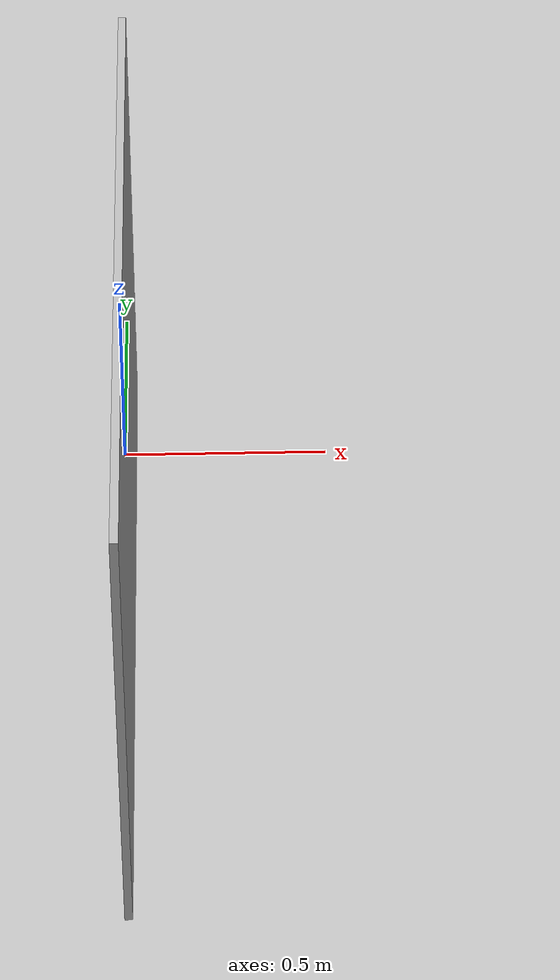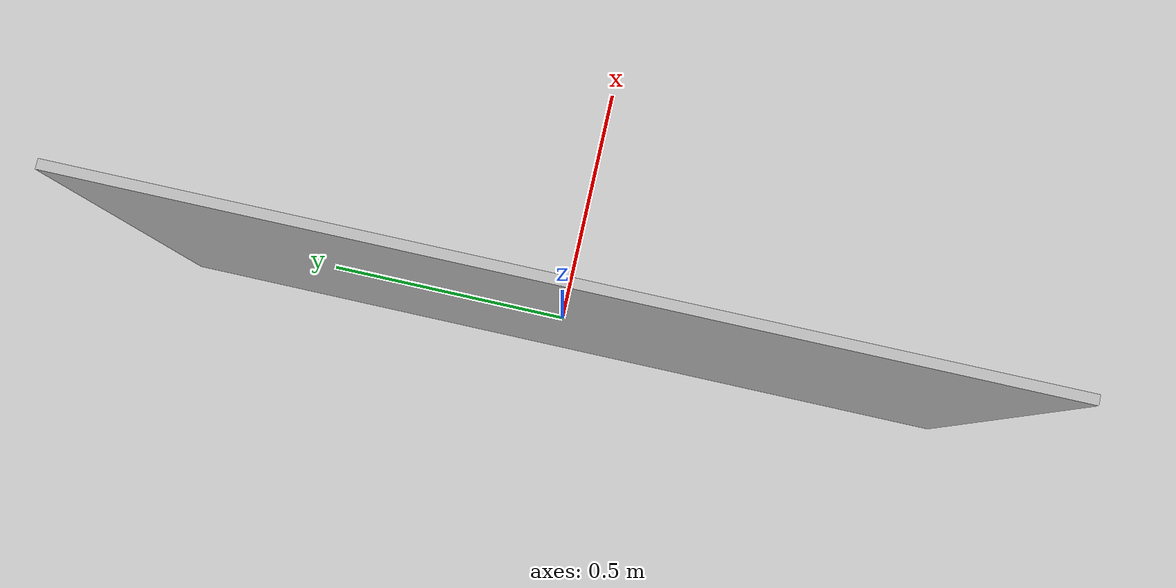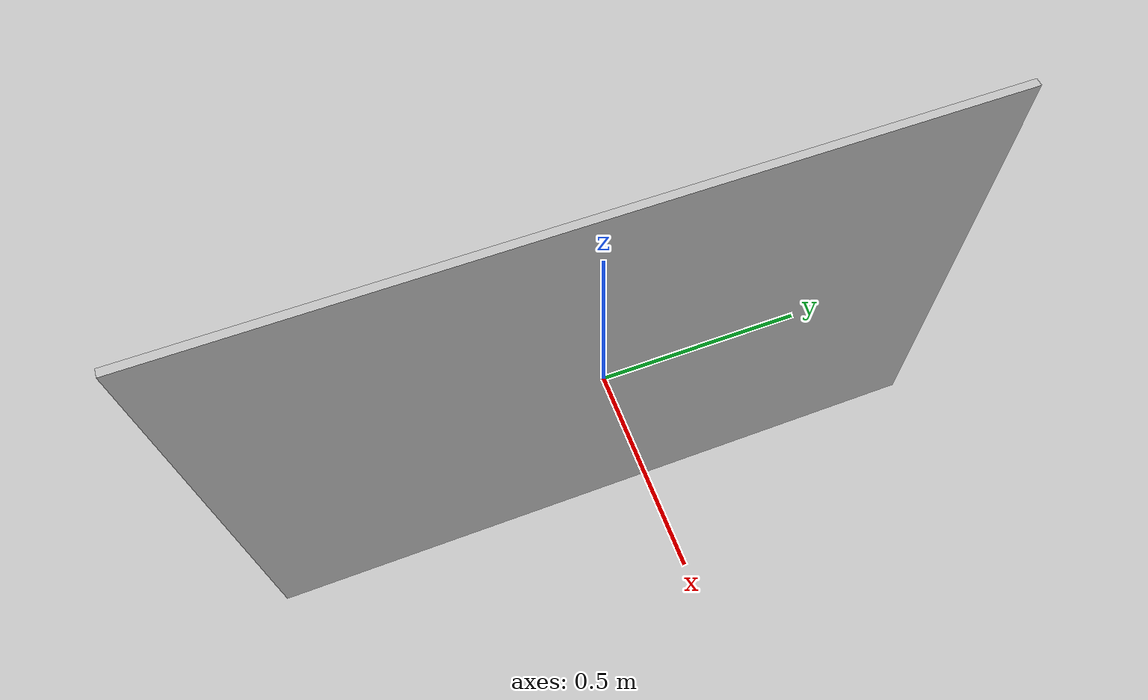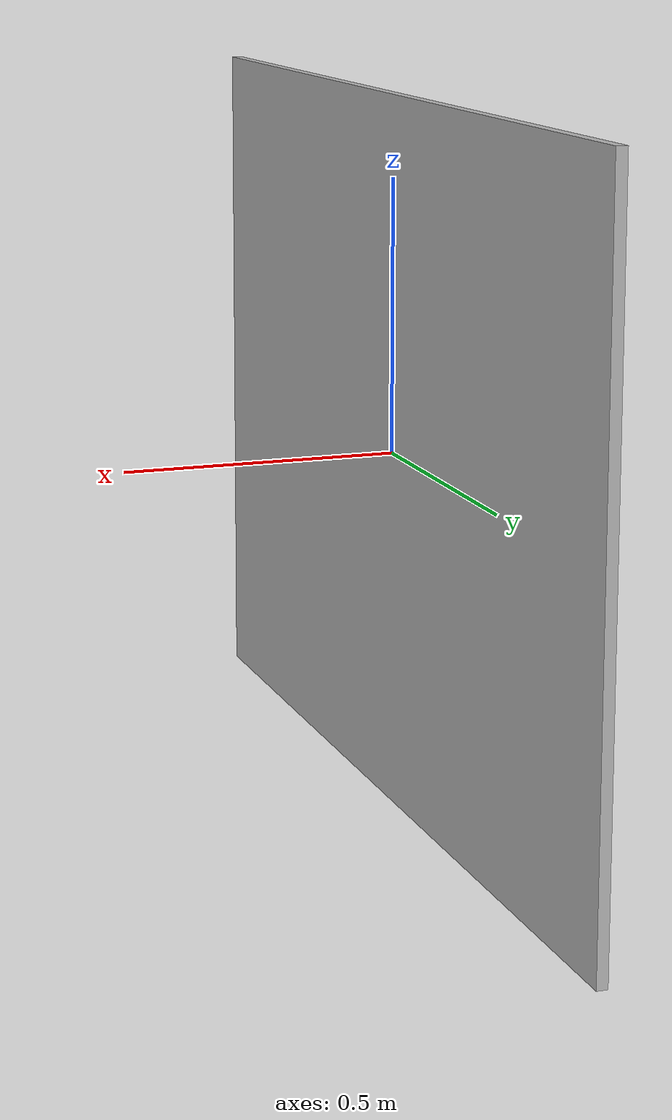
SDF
<?xml version="1.0" ?>
<sdf version="1.4">
  <model name="aruco_board">
    <static>0</static>
    <link name="marker">
      <inertial>
        <mass>0.5</mass>
        <inertia>
          <ixx>0.000000</ixx>
          <ixy>0.000000</ixy>
          <ixz>0.000000</ixz>
          <iyy>0.000000</iyy>
          <iyz>0.000000</iyz>
          <izz>0.000000</izz>
        </inertia>
      </inertial>
      <visual name="visual">
        <geometry>
          <box>
            <size>0.02 1.9 1.3</size>
          </box>
        </geometry>
        <material>
          <script>
	    <uri>model://aruco_board/material/scripts</uri>
	    <uri>model://aruco_board/material/textures</uri>
            <name>Aruco/aruco_board</name>
          </script>
        </material>
      </visual>
      <collision name="collision">
        <geometry>
          <box>
            <size>0.02 1.9 1.3</size>
            <!-- SIZE OF THE MARKER + MARGIN -->
          </box>
        </geometry>
        <surface>
          <bounce />
          <friction>
            <ode />
          </friction>
          <contact>
            <ode />
          </contact>
        </surface>
      </collision>
      <self_collide>1</self_collide>
      <kinematic>0</kinematic>
      <gravity>0</gravity>
    </link>
  </model>
</sdf>
